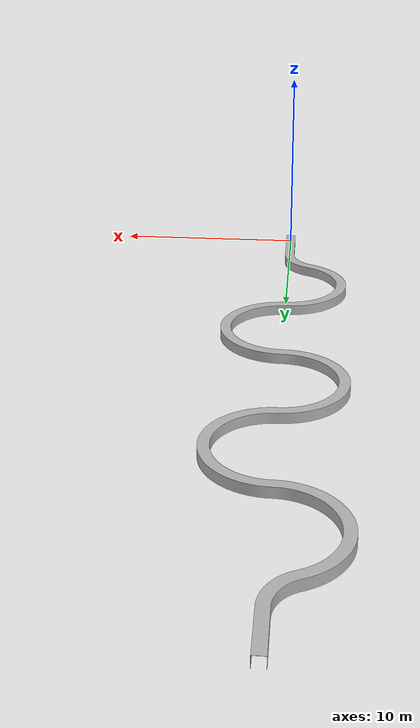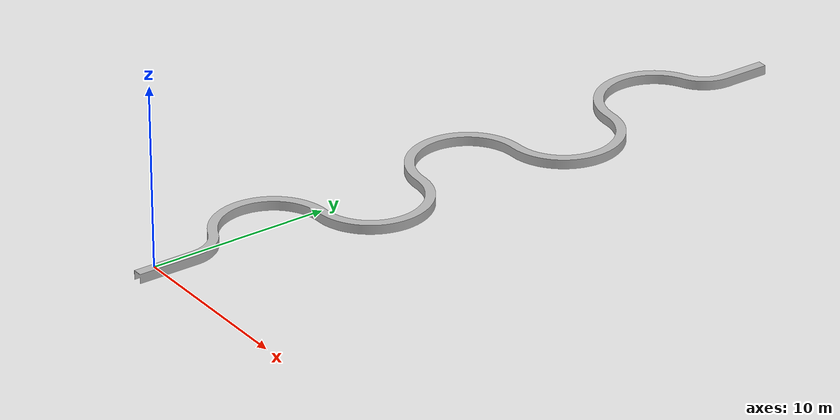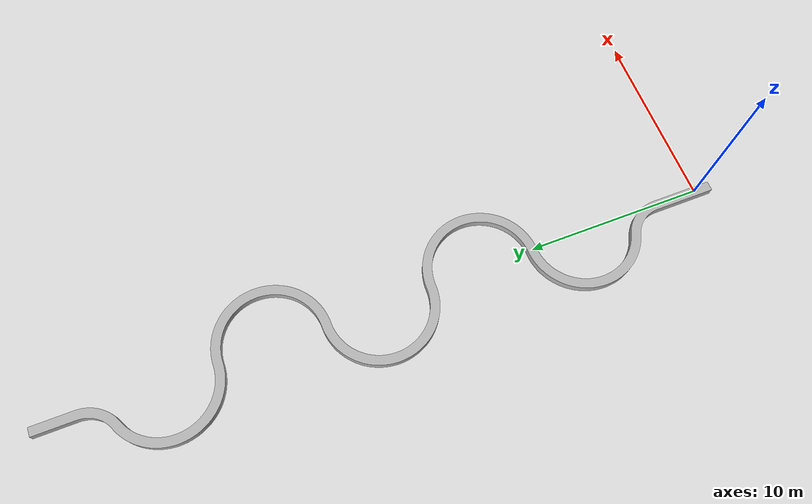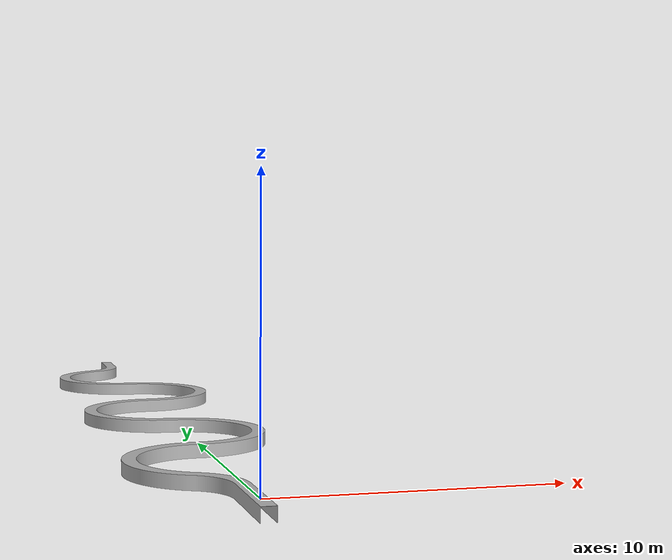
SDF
<?xml version="1.0"?>
<sdf version="1.5">

  <model name="tube">
    <pose>0 0 0  0 0 0</pose>
    <static>true</static>

    <link name="tube_base_link">
      <visual name="visual">
        <geometry>
          <mesh><uri>file://tube_10m_sin.dae</uri></mesh>
        </geometry>
      </visual>

      <collision name="collision">
        <geometry>
          <mesh><uri>file://tube_10m_sin.dae</uri></mesh>
        </geometry>
      </collision>

    </link>
  </model>

</sdf>
